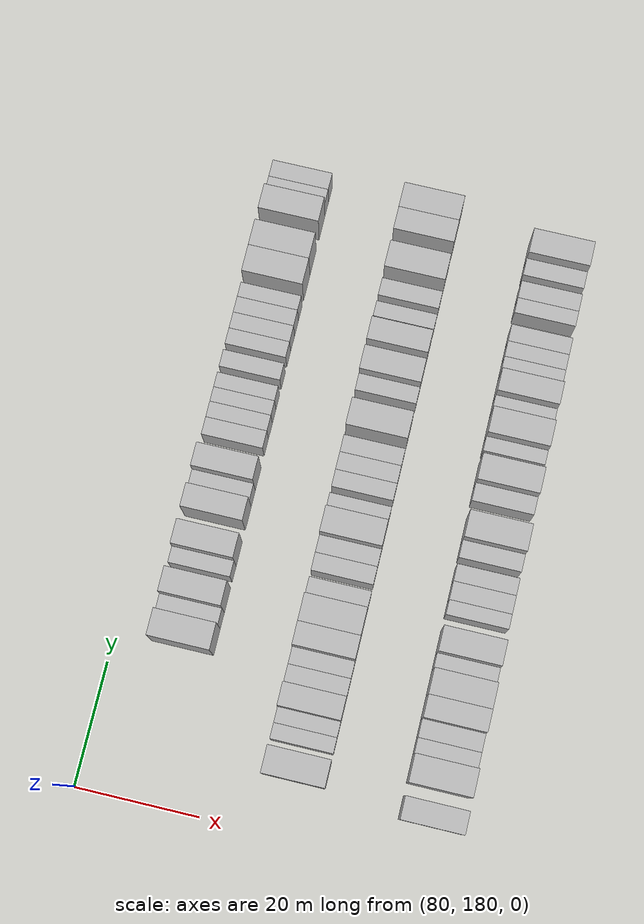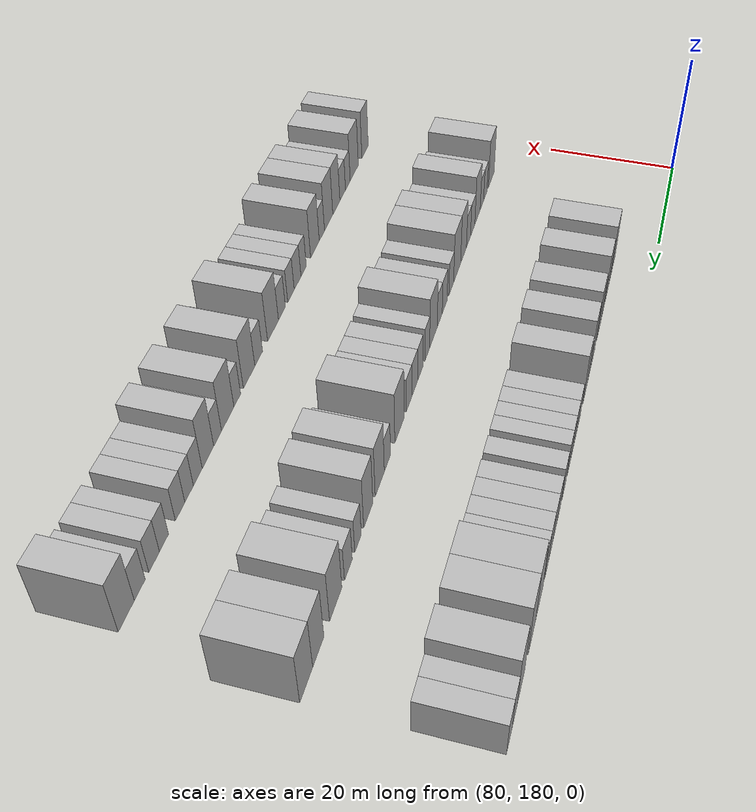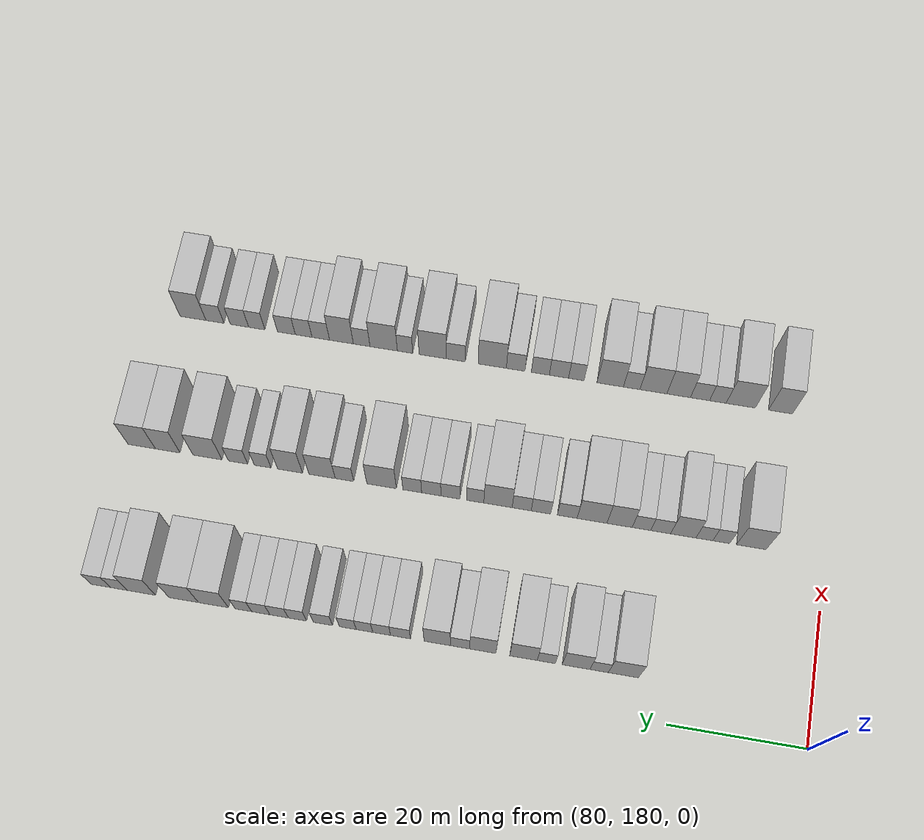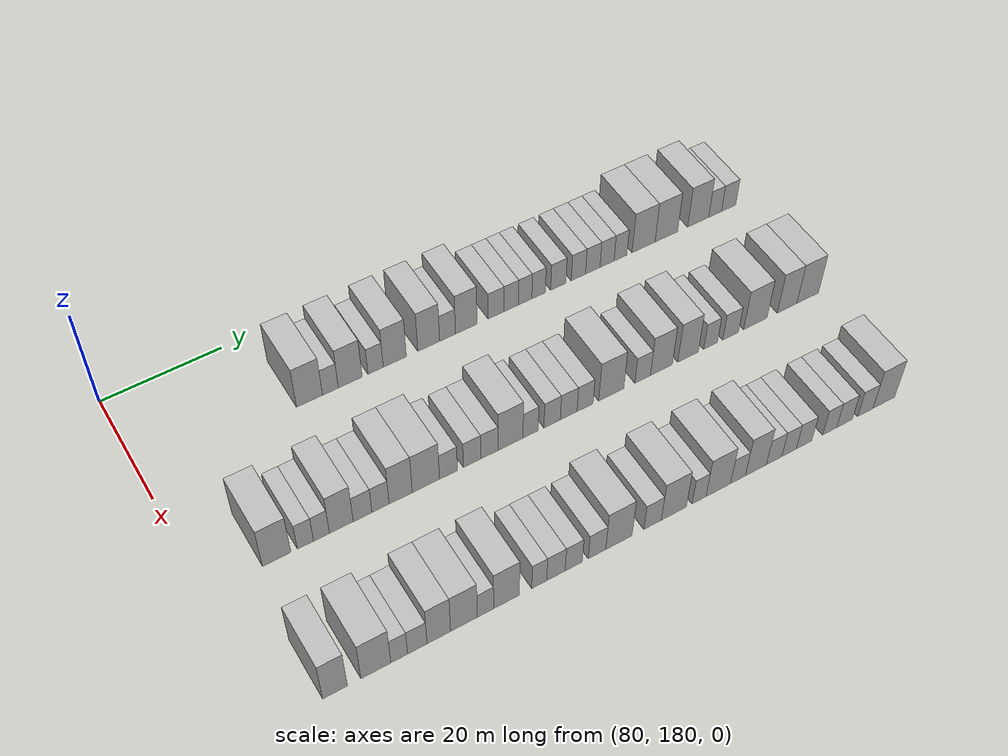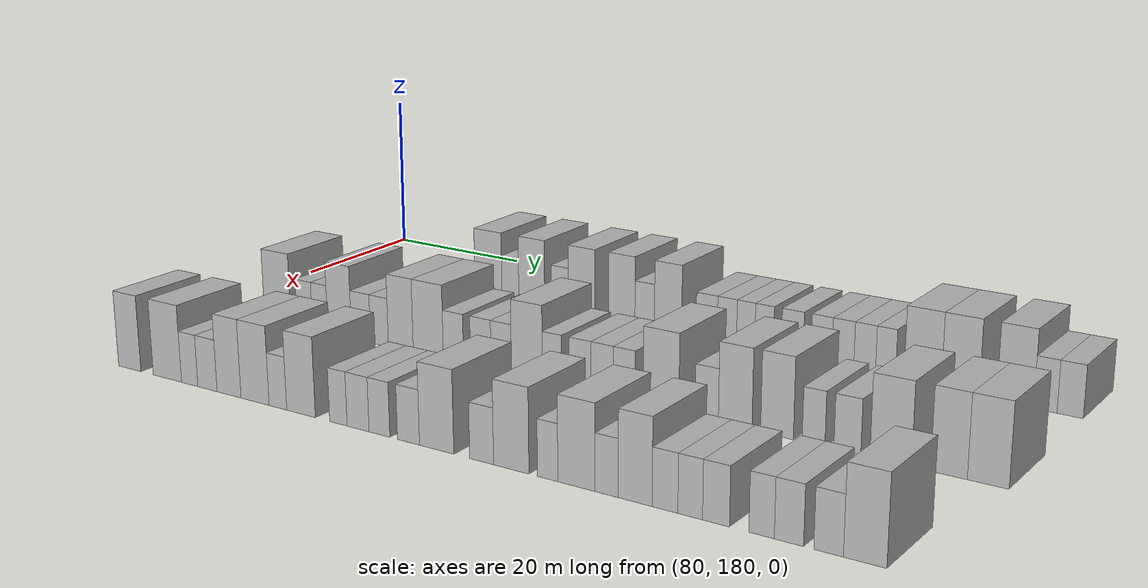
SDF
<sdf version="1.6">
 <world name="default">
  <model name="building_680">
   <static>1</static>
   <pose>91.0000 206.9503 0 0.000000 0.000000 0.000000</pose>
   <link name="link">
    <pose>0 0 4.50 0 0 0</pose>
    <collision name="collision"><geometry><box><size>10.0000 4.3336 9.0000</size></box></geometry></collision>
    <visual name="visual">
     <cast_shadows>0</cast_shadows>
     <geometry><box><size>10.0000 4.3336 9.0000</size></box></geometry>
     <material>
      <script>
       <uri>model://HANNAS_wall/materials/scripts</uri>
       <uri>model://HANNAS_wall/materials/textures</uri>
       <name>vrc/HANNAS_wall</name>
      </script>
     </material>
    </visual>
   </link>
  </model>
  <model name="building_681">
   <static>1</static>
   <pose>91.0000 210.4421 0 0.000000 0.000000 0.000000</pose>
   <link name="link">
    <pose>0 0 3.00 0 0 0</pose>
    <collision name="collision"><geometry><box><size>10.0000 2.6500 6.0000</size></box></geometry></collision>
    <visual name="visual">
     <cast_shadows>0</cast_shadows>
     <geometry><box><size>10.0000 2.6500 6.0000</size></box></geometry>
     <material>
      <script>
       <uri>model://HANNAS_wall/materials/scripts</uri>
       <uri>model://HANNAS_wall/materials/textures</uri>
       <name>vrc/HANNAS_wall</name>
      </script>
     </material>
    </visual>
   </link>
  </model>
  <model name="building_682">
   <static>1</static>
   <pose>91.0000 213.7800 0 0.000000 0.000000 0.000000</pose>
   <link name="link">
    <pose>0 0 4.50 0 0 0</pose>
    <collision name="collision"><geometry><box><size>10.0000 4.0259 9.0000</size></box></geometry></collision>
    <visual name="visual">
     <cast_shadows>0</cast_shadows>
     <geometry><box><size>10.0000 4.0259 9.0000</size></box></geometry>
     <material>
      <script>
       <uri>model://HANNAS_wall/materials/scripts</uri>
       <uri>model://HANNAS_wall/materials/textures</uri>
       <name>vrc/HANNAS_wall</name>
      </script>
     </material>
    </visual>
   </link>
  </model>
  <model name="building_683">
   <static>1</static>
   <pose>91.0000 218.1028 0 0.000000 0.000000 0.000000</pose>
   <link name="link">
    <pose>0 0 3.00 0 0 0</pose>
    <collision name="collision"><geometry><box><size>10.0000 2.6197 6.0000</size></box></geometry></collision>
    <visual name="visual">
     <cast_shadows>0</cast_shadows>
     <geometry><box><size>10.0000 2.6197 6.0000</size></box></geometry>
     <material>
      <script>
       <uri>model://HANNAS_wall/materials/scripts</uri>
       <uri>model://HANNAS_wall/materials/textures</uri>
       <name>vrc/HANNAS_wall</name>
      </script>
     </material>
    </visual>
   </link>
  </model>
  <model name="building_684">
   <static>1</static>
   <pose>91.0000 221.4062 0 0.000000 0.000000 0.000000</pose>
   <link name="link">
    <pose>0 0 4.50 0 0 0</pose>
    <collision name="collision"><geometry><box><size>10.0000 3.9870 9.0000</size></box></geometry></collision>
    <visual name="visual">
     <cast_shadows>0</cast_shadows>
     <geometry><box><size>10.0000 3.9870 9.0000</size></box></geometry>
     <material>
      <script>
       <uri>model://HANNAS_wall/materials/scripts</uri>
       <uri>model://HANNAS_wall/materials/textures</uri>
       <name>vrc/HANNAS_wall</name>
      </script>
     </material>
    </visual>
   </link>
  </model>
  <model name="building_685">
   <static>1</static>
   <pose>91.0000 227.3130 0 0.000000 0.000000 0.000000</pose>
   <link name="link">
    <pose>0 0 4.50 0 0 0</pose>
    <collision name="collision"><geometry><box><size>10.0000 3.8268 9.0000</size></box></geometry></collision>
    <visual name="visual">
     <cast_shadows>0</cast_shadows>
     <geometry><box><size>10.0000 3.8268 9.0000</size></box></geometry>
     <material>
      <script>
       <uri>model://HANNAS_wall/materials/scripts</uri>
       <uri>model://HANNAS_wall/materials/textures</uri>
       <name>vrc/HANNAS_wall</name>
      </script>
     </material>
    </visual>
   </link>
  </model>
  <model name="building_686">
   <static>1</static>
   <pose>91.0000 230.6304 0 0.000000 0.000000 0.000000</pose>
   <link name="link">
    <pose>0 0 3.00 0 0 0</pose>
    <collision name="collision"><geometry><box><size>10.0000 2.8080 6.0000</size></box></geometry></collision>
    <visual name="visual">
     <cast_shadows>0</cast_shadows>
     <geometry><box><size>10.0000 2.8080 6.0000</size></box></geometry>
     <material>
      <script>
       <uri>model://HANNAS_wall/materials/scripts</uri>
       <uri>model://HANNAS_wall/materials/textures</uri>
       <name>vrc/HANNAS_wall</name>
      </script>
     </material>
    </visual>
   </link>
  </model>
  <model name="building_687">
   <static>1</static>
   <pose>91.0000 233.9497 0 0.000000 0.000000 0.000000</pose>
   <link name="link">
    <pose>0 0 4.50 0 0 0</pose>
    <collision name="collision"><geometry><box><size>10.0000 3.8306 9.0000</size></box></geometry></collision>
    <visual name="visual">
     <cast_shadows>0</cast_shadows>
     <geometry><box><size>10.0000 3.8306 9.0000</size></box></geometry>
     <material>
      <script>
       <uri>model://HANNAS_wall/materials/scripts</uri>
       <uri>model://HANNAS_wall/materials/textures</uri>
       <name>vrc/HANNAS_wall</name>
      </script>
     </material>
    </visual>
   </link>
  </model>
  <model name="building_688">
   <static>1</static>
   <pose>91.0000 239.3176 0 0.000000 0.000000 0.000000</pose>
   <link name="link">
    <pose>0 0 3.00 0 0 0</pose>
    <collision name="collision"><geometry><box><size>10.0000 2.9052 6.0000</size></box></geometry></collision>
    <visual name="visual">
     <cast_shadows>0</cast_shadows>
     <geometry><box><size>10.0000 2.9052 6.0000</size></box></geometry>
     <material>
      <script>
       <uri>model://HANNAS_wall/materials/scripts</uri>
       <uri>model://HANNAS_wall/materials/textures</uri>
       <name>vrc/HANNAS_wall</name>
      </script>
     </material>
    </visual>
   </link>
  </model>
  <model name="building_689">
   <static>1</static>
   <pose>91.0000 242.0806 0 0.000000 0.000000 0.000000</pose>
   <link name="link">
    <pose>0 0 3.00 0 0 0</pose>
    <collision name="collision"><geometry><box><size>10.0000 2.6209 6.0000</size></box></geometry></collision>
    <visual name="visual">
     <cast_shadows>0</cast_shadows>
     <geometry><box><size>10.0000 2.6209 6.0000</size></box></geometry>
     <material>
      <script>
       <uri>model://HANNAS_wall/materials/scripts</uri>
       <uri>model://HANNAS_wall/materials/textures</uri>
       <name>vrc/HANNAS_wall</name>
      </script>
     </material>
    </visual>
   </link>
  </model>
  <model name="building_690">
   <static>1</static>
   <pose>91.0000 244.6082 0 0.000000 0.000000 0.000000</pose>
   <link name="link">
    <pose>0 0 3.00 0 0 0</pose>
    <collision name="collision"><geometry><box><size>10.0000 2.4342 6.0000</size></box></geometry></collision>
    <visual name="visual">
     <cast_shadows>0</cast_shadows>
     <geometry><box><size>10.0000 2.4342 6.0000</size></box></geometry>
     <material>
      <script>
       <uri>model://HANNAS_wall/materials/scripts</uri>
       <uri>model://HANNAS_wall/materials/textures</uri>
       <name>vrc/HANNAS_wall</name>
      </script>
     </material>
    </visual>
   </link>
  </model>
  <model name="building_691">
   <static>1</static>
   <pose>91.0000 247.0663 0 0.000000 0.000000 0.000000</pose>
   <link name="link">
    <pose>0 0 3.00 0 0 0</pose>
    <collision name="collision"><geometry><box><size>10.0000 2.4821 6.0000</size></box></geometry></collision>
    <visual name="visual">
     <cast_shadows>0</cast_shadows>
     <geometry><box><size>10.0000 2.4821 6.0000</size></box></geometry>
     <material>
      <script>
       <uri>model://HANNAS_wall/materials/scripts</uri>
       <uri>model://HANNAS_wall/materials/textures</uri>
       <name>vrc/HANNAS_wall</name>
      </script>
     </material>
    </visual>
   </link>
  </model>
  <model name="building_692">
   <static>1</static>
   <pose>91.0000 250.7276 0 0.000000 0.000000 0.000000</pose>
   <link name="link">
    <pose>0 0 3.00 0 0 0</pose>
    <collision name="collision"><geometry><box><size>10.0000 2.8404 6.0000</size></box></geometry></collision>
    <visual name="visual">
     <cast_shadows>0</cast_shadows>
     <geometry><box><size>10.0000 2.8404 6.0000</size></box></geometry>
     <material>
      <script>
       <uri>model://HANNAS_wall/materials/scripts</uri>
       <uri>model://HANNAS_wall/materials/textures</uri>
       <name>vrc/HANNAS_wall</name>
      </script>
     </material>
    </visual>
   </link>
  </model>
  <model name="building_693">
   <static>1</static>
   <pose>91.0000 254.4878 0 0.000000 0.000000 0.000000</pose>
   <link name="link">
    <pose>0 0 3.00 0 0 0</pose>
    <collision name="collision"><geometry><box><size>10.0000 2.6800 6.0000</size></box></geometry></collision>
    <visual name="visual">
     <cast_shadows>0</cast_shadows>
     <geometry><box><size>10.0000 2.6800 6.0000</size></box></geometry>
     <material>
      <script>
       <uri>model://HANNAS_wall/materials/scripts</uri>
       <uri>model://HANNAS_wall/materials/textures</uri>
       <name>vrc/HANNAS_wall</name>
      </script>
     </material>
    </visual>
   </link>
  </model>
  <model name="building_694">
   <static>1</static>
   <pose>91.0000 257.1949 0 0.000000 0.000000 0.000000</pose>
   <link name="link">
    <pose>0 0 3.00 0 0 0</pose>
    <collision name="collision"><geometry><box><size>10.0000 2.7341 6.0000</size></box></geometry></collision>
    <visual name="visual">
     <cast_shadows>0</cast_shadows>
     <geometry><box><size>10.0000 2.7341 6.0000</size></box></geometry>
     <material>
      <script>
       <uri>model://HANNAS_wall/materials/scripts</uri>
       <uri>model://HANNAS_wall/materials/textures</uri>
       <name>vrc/HANNAS_wall</name>
      </script>
     </material>
    </visual>
   </link>
  </model>
  <model name="building_695">
   <static>1</static>
   <pose>91.0000 259.9064 0 0.000000 0.000000 0.000000</pose>
   <link name="link">
    <pose>0 0 3.00 0 0 0</pose>
    <collision name="collision"><geometry><box><size>10.0000 2.6890 6.0000</size></box></geometry></collision>
    <visual name="visual">
     <cast_shadows>0</cast_shadows>
     <geometry><box><size>10.0000 2.6890 6.0000</size></box></geometry>
     <material>
      <script>
       <uri>model://HANNAS_wall/materials/scripts</uri>
       <uri>model://HANNAS_wall/materials/textures</uri>
       <name>vrc/HANNAS_wall</name>
      </script>
     </material>
    </visual>
   </link>
  </model>
  <model name="building_696">
   <static>1</static>
   <pose>91.0000 262.4803 0 0.000000 0.000000 0.000000</pose>
   <link name="link">
    <pose>0 0 3.00 0 0 0</pose>
    <collision name="collision"><geometry><box><size>10.0000 2.4589 6.0000</size></box></geometry></collision>
    <visual name="visual">
     <cast_shadows>0</cast_shadows>
     <geometry><box><size>10.0000 2.4589 6.0000</size></box></geometry>
     <material>
      <script>
       <uri>model://HANNAS_wall/materials/scripts</uri>
       <uri>model://HANNAS_wall/materials/textures</uri>
       <name>vrc/HANNAS_wall</name>
      </script>
     </material>
    </visual>
   </link>
  </model>
  <model name="building_697">
   <static>1</static>
   <pose>91.0000 266.9426 0 0.000000 0.000000 0.000000</pose>
   <link name="link">
    <pose>0 0 4.50 0 0 0</pose>
    <collision name="collision"><geometry><box><size>10.0000 4.4658 9.0000</size></box></geometry></collision>
    <visual name="visual">
     <cast_shadows>0</cast_shadows>
     <geometry><box><size>10.0000 4.4658 9.0000</size></box></geometry>
     <material>
      <script>
       <uri>model://HANNAS_wall/materials/scripts</uri>
       <uri>model://HANNAS_wall/materials/textures</uri>
       <name>vrc/HANNAS_wall</name>
      </script>
     </material>
    </visual>
   </link>
  </model>
  <model name="building_698">
   <static>1</static>
   <pose>91.0000 271.3795 0 0.000000 0.000000 0.000000</pose>
   <link name="link">
    <pose>0 0 4.50 0 0 0</pose>
    <collision name="collision"><geometry><box><size>10.0000 4.4080 9.0000</size></box></geometry></collision>
    <visual name="visual">
     <cast_shadows>0</cast_shadows>
     <geometry><box><size>10.0000 4.4080 9.0000</size></box></geometry>
     <material>
      <script>
       <uri>model://HANNAS_wall/materials/scripts</uri>
       <uri>model://HANNAS_wall/materials/textures</uri>
       <name>vrc/HANNAS_wall</name>
      </script>
     </material>
    </visual>
   </link>
  </model>
  <model name="building_699">
   <static>1</static>
   <pose>91.0000 277.6710 0 0.000000 0.000000 0.000000</pose>
   <link name="link">
    <pose>0 0 4.50 0 0 0</pose>
    <collision name="collision"><geometry><box><size>10.0000 4.1749 9.0000</size></box></geometry></collision>
    <visual name="visual">
     <cast_shadows>0</cast_shadows>
     <geometry><box><size>10.0000 4.1749 9.0000</size></box></geometry>
     <material>
      <script>
       <uri>model://HANNAS_wall/materials/scripts</uri>
       <uri>model://HANNAS_wall/materials/textures</uri>
       <name>vrc/HANNAS_wall</name>
      </script>
     </material>
    </visual>
   </link>
  </model>
  <model name="building_700">
   <static>1</static>
   <pose>91.0000 281.0424 0 0.000000 0.000000 0.000000</pose>
   <link name="link">
    <pose>0 0 3.00 0 0 0</pose>
    <collision name="collision"><geometry><box><size>10.0000 2.5679 6.0000</size></box></geometry></collision>
    <visual name="visual">
     <cast_shadows>0</cast_shadows>
     <geometry><box><size>10.0000 2.5679 6.0000</size></box></geometry>
     <material>
      <script>
       <uri>model://HANNAS_wall/materials/scripts</uri>
       <uri>model://HANNAS_wall/materials/textures</uri>
       <name>vrc/HANNAS_wall</name>
      </script>
     </material>
    </visual>
   </link>
  </model>
  <model name="building_701">
   <static>1</static>
   <pose>91.0000 283.7625 0 0.000000 0.000000 0.000000</pose>
   <link name="link">
    <pose>0 0 3.00 0 0 0</pose>
    <collision name="collision"><geometry><box><size>10.0000 2.8722 6.0000</size></box></geometry></collision>
    <visual name="visual">
     <cast_shadows>0</cast_shadows>
     <geometry><box><size>10.0000 2.8722 6.0000</size></box></geometry>
     <material>
      <script>
       <uri>model://HANNAS_wall/materials/scripts</uri>
       <uri>model://HANNAS_wall/materials/textures</uri>
       <name>vrc/HANNAS_wall</name>
      </script>
     </material>
    </visual>
   </link>
  </model>
  <model name="building_864">
   <static>1</static>
   <pose>113.0000 190.8832 0 0.000000 0.000000 0.000000</pose>
   <link name="link">
    <pose>0 0 4.50 0 0 0</pose>
    <collision name="collision"><geometry><box><size>10.0000 4.3804 9.0000</size></box></geometry></collision>
    <visual name="visual">
     <cast_shadows>0</cast_shadows>
     <geometry><box><size>10.0000 4.3804 9.0000</size></box></geometry>
     <material>
      <script>
       <uri>model://HANNAS_wall/materials/scripts</uri>
       <uri>model://HANNAS_wall/materials/textures</uri>
       <name>vrc/HANNAS_wall</name>
      </script>
     </material>
    </visual>
   </link>
  </model>
  <model name="building_865">
   <static>1</static>
   <pose>113.0000 195.3348 0 0.000000 0.000000 0.000000</pose>
   <link name="link">
    <pose>0 0 3.00 0 0 0</pose>
    <collision name="collision"><geometry><box><size>10.0000 2.5228 6.0000</size></box></geometry></collision>
    <visual name="visual">
     <cast_shadows>0</cast_shadows>
     <geometry><box><size>10.0000 2.5228 6.0000</size></box></geometry>
     <material>
      <script>
       <uri>model://HANNAS_wall/materials/scripts</uri>
       <uri>model://HANNAS_wall/materials/textures</uri>
       <name>vrc/HANNAS_wall</name>
      </script>
     </material>
    </visual>
   </link>
  </model>
  <model name="building_866">
   <static>1</static>
   <pose>113.0000 197.8386 0 0.000000 0.000000 0.000000</pose>
   <link name="link">
    <pose>0 0 3.00 0 0 0</pose>
    <collision name="collision"><geometry><box><size>10.0000 2.4848 6.0000</size></box></geometry></collision>
    <visual name="visual">
     <cast_shadows>0</cast_shadows>
     <geometry><box><size>10.0000 2.4848 6.0000</size></box></geometry>
     <material>
      <script>
       <uri>model://HANNAS_wall/materials/scripts</uri>
       <uri>model://HANNAS_wall/materials/textures</uri>
       <name>vrc/HANNAS_wall</name>
      </script>
     </material>
    </visual>
   </link>
  </model>
  <model name="building_867">
   <static>1</static>
   <pose>113.0000 200.9615 0 0.000000 0.000000 0.000000</pose>
   <link name="link">
    <pose>0 0 4.50 0 0 0</pose>
    <collision name="collision"><geometry><box><size>10.0000 3.7610 9.0000</size></box></geometry></collision>
    <visual name="visual">
     <cast_shadows>0</cast_shadows>
     <geometry><box><size>10.0000 3.7610 9.0000</size></box></geometry>
     <material>
      <script>
       <uri>model://HANNAS_wall/materials/scripts</uri>
       <uri>model://HANNAS_wall/materials/textures</uri>
       <name>vrc/HANNAS_wall</name>
      </script>
     </material>
    </visual>
   </link>
  </model>
  <model name="building_868">
   <static>1</static>
   <pose>113.0000 204.3295 0 0.000000 0.000000 0.000000</pose>
   <link name="link">
    <pose>0 0 3.00 0 0 0</pose>
    <collision name="collision"><geometry><box><size>10.0000 2.9751 6.0000</size></box></geometry></collision>
    <visual name="visual">
     <cast_shadows>0</cast_shadows>
     <geometry><box><size>10.0000 2.9751 6.0000</size></box></geometry>
     <material>
      <script>
       <uri>model://HANNAS_wall/materials/scripts</uri>
       <uri>model://HANNAS_wall/materials/textures</uri>
       <name>vrc/HANNAS_wall</name>
      </script>
     </material>
    </visual>
   </link>
  </model>
  <model name="building_869">
   <static>1</static>
   <pose>113.0000 207.1946 0 0.000000 0.000000 0.000000</pose>
   <link name="link">
    <pose>0 0 3.00 0 0 0</pose>
    <collision name="collision"><geometry><box><size>10.0000 2.7550 6.0000</size></box></geometry></collision>
    <visual name="visual">
     <cast_shadows>0</cast_shadows>
     <geometry><box><size>10.0000 2.7550 6.0000</size></box></geometry>
     <material>
      <script>
       <uri>model://HANNAS_wall/materials/scripts</uri>
       <uri>model://HANNAS_wall/materials/textures</uri>
       <name>vrc/HANNAS_wall</name>
      </script>
     </material>
    </visual>
   </link>
  </model>
  <model name="building_870">
   <static>1</static>
   <pose>113.0000 210.4574 0 0.000000 0.000000 0.000000</pose>
   <link name="link">
    <pose>0 0 4.50 0 0 0</pose>
    <collision name="collision"><geometry><box><size>10.0000 3.7706 9.0000</size></box></geometry></collision>
    <visual name="visual">
     <cast_shadows>0</cast_shadows>
     <geometry><box><size>10.0000 3.7706 9.0000</size></box></geometry>
     <material>
      <script>
       <uri>model://HANNAS_wall/materials/scripts</uri>
       <uri>model://HANNAS_wall/materials/textures</uri>
       <name>vrc/HANNAS_wall</name>
      </script>
     </material>
    </visual>
   </link>
  </model>
  <model name="building_871">
   <static>1</static>
   <pose>113.0000 214.5747 0 0.000000 0.000000 0.000000</pose>
   <link name="link">
    <pose>0 0 4.50 0 0 0</pose>
    <collision name="collision"><geometry><box><size>10.0000 4.4639 9.0000</size></box></geometry></collision>
    <visual name="visual">
     <cast_shadows>0</cast_shadows>
     <geometry><box><size>10.0000 4.4639 9.0000</size></box></geometry>
     <material>
      <script>
       <uri>model://HANNAS_wall/materials/scripts</uri>
       <uri>model://HANNAS_wall/materials/textures</uri>
       <name>vrc/HANNAS_wall</name>
      </script>
     </material>
    </visual>
   </link>
  </model>
  <model name="building_872">
   <static>1</static>
   <pose>113.0000 218.2858 0 0.000000 0.000000 0.000000</pose>
   <link name="link">
    <pose>0 0 3.00 0 0 0</pose>
    <collision name="collision"><geometry><box><size>10.0000 2.9584 6.0000</size></box></geometry></collision>
    <visual name="visual">
     <cast_shadows>0</cast_shadows>
     <geometry><box><size>10.0000 2.9584 6.0000</size></box></geometry>
     <material>
      <script>
       <uri>model://HANNAS_wall/materials/scripts</uri>
       <uri>model://HANNAS_wall/materials/textures</uri>
       <name>vrc/HANNAS_wall</name>
      </script>
     </material>
    </visual>
   </link>
  </model>
  <model name="building_873">
   <static>1</static>
   <pose>113.0000 222.2305 0 0.000000 0.000000 0.000000</pose>
   <link name="link">
    <pose>0 0 3.00 0 0 0</pose>
    <collision name="collision"><geometry><box><size>10.0000 2.9311 6.0000</size></box></geometry></collision>
    <visual name="visual">
     <cast_shadows>0</cast_shadows>
     <geometry><box><size>10.0000 2.9311 6.0000</size></box></geometry>
     <material>
      <script>
       <uri>model://HANNAS_wall/materials/scripts</uri>
       <uri>model://HANNAS_wall/materials/textures</uri>
       <name>vrc/HANNAS_wall</name>
      </script>
     </material>
    </visual>
   </link>
  </model>
  <model name="building_874">
   <static>1</static>
   <pose>113.0000 225.1241 0 0.000000 0.000000 0.000000</pose>
   <link name="link">
    <pose>0 0 3.00 0 0 0</pose>
    <collision name="collision"><geometry><box><size>10.0000 2.8561 6.0000</size></box></geometry></collision>
    <visual name="visual">
     <cast_shadows>0</cast_shadows>
     <geometry><box><size>10.0000 2.8561 6.0000</size></box></geometry>
     <material>
      <script>
       <uri>model://HANNAS_wall/materials/scripts</uri>
       <uri>model://HANNAS_wall/materials/textures</uri>
       <name>vrc/HANNAS_wall</name>
      </script>
     </material>
    </visual>
   </link>
  </model>
  <model name="building_875">
   <static>1</static>
   <pose>113.0000 228.6903 0 0.000000 0.000000 0.000000</pose>
   <link name="link">
    <pose>0 0 4.50 0 0 0</pose>
    <collision name="collision"><geometry><box><size>10.0000 4.2763 9.0000</size></box></geometry></collision>
    <visual name="visual">
     <cast_shadows>0</cast_shadows>
     <geometry><box><size>10.0000 4.2763 9.0000</size></box></geometry>
     <material>
      <script>
       <uri>model://HANNAS_wall/materials/scripts</uri>
       <uri>model://HANNAS_wall/materials/textures</uri>
       <name>vrc/HANNAS_wall</name>
      </script>
     </material>
    </visual>
   </link>
  </model>
  <model name="building_876">
   <static>1</static>
   <pose>113.0000 232.1384 0 0.000000 0.000000 0.000000</pose>
   <link name="link">
    <pose>0 0 3.00 0 0 0</pose>
    <collision name="collision"><geometry><box><size>10.0000 2.6198 6.0000</size></box></geometry></collision>
    <visual name="visual">
     <cast_shadows>0</cast_shadows>
     <geometry><box><size>10.0000 2.6198 6.0000</size></box></geometry>
     <material>
      <script>
       <uri>model://HANNAS_wall/materials/scripts</uri>
       <uri>model://HANNAS_wall/materials/textures</uri>
       <name>vrc/HANNAS_wall</name>
      </script>
     </material>
    </visual>
   </link>
  </model>
  <model name="building_877">
   <static>1</static>
   <pose>113.0000 235.8734 0 0.000000 0.000000 0.000000</pose>
   <link name="link">
    <pose>0 0 3.00 0 0 0</pose>
    <collision name="collision"><geometry><box><size>10.0000 2.8501 6.0000</size></box></geometry></collision>
    <visual name="visual">
     <cast_shadows>0</cast_shadows>
     <geometry><box><size>10.0000 2.8501 6.0000</size></box></geometry>
     <material>
      <script>
       <uri>model://HANNAS_wall/materials/scripts</uri>
       <uri>model://HANNAS_wall/materials/textures</uri>
       <name>vrc/HANNAS_wall</name>
      </script>
     </material>
    </visual>
   </link>
  </model>
  <model name="building_878">
   <static>1</static>
   <pose>113.0000 238.7595 0 0.000000 0.000000 0.000000</pose>
   <link name="link">
    <pose>0 0 3.00 0 0 0</pose>
    <collision name="collision"><geometry><box><size>10.0000 2.9222 6.0000</size></box></geometry></collision>
    <visual name="visual">
     <cast_shadows>0</cast_shadows>
     <geometry><box><size>10.0000 2.9222 6.0000</size></box></geometry>
     <material>
      <script>
       <uri>model://HANNAS_wall/materials/scripts</uri>
       <uri>model://HANNAS_wall/materials/textures</uri>
       <name>vrc/HANNAS_wall</name>
      </script>
     </material>
    </visual>
   </link>
  </model>
  <model name="building_879">
   <static>1</static>
   <pose>113.0000 241.6401 0 0.000000 0.000000 0.000000</pose>
   <link name="link">
    <pose>0 0 3.00 0 0 0</pose>
    <collision name="collision"><geometry><box><size>10.0000 2.8390 6.0000</size></box></geometry></collision>
    <visual name="visual">
     <cast_shadows>0</cast_shadows>
     <geometry><box><size>10.0000 2.8390 6.0000</size></box></geometry>
     <material>
      <script>
       <uri>model://HANNAS_wall/materials/scripts</uri>
       <uri>model://HANNAS_wall/materials/textures</uri>
       <name>vrc/HANNAS_wall</name>
      </script>
     </material>
    </visual>
   </link>
  </model>
  <model name="building_880">
   <static>1</static>
   <pose>113.0000 246.3062 0 0.000000 0.000000 0.000000</pose>
   <link name="link">
    <pose>0 0 4.50 0 0 0</pose>
    <collision name="collision"><geometry><box><size>10.0000 4.4931 9.0000</size></box></geometry></collision>
    <visual name="visual">
     <cast_shadows>0</cast_shadows>
     <geometry><box><size>10.0000 4.4931 9.0000</size></box></geometry>
     <material>
      <script>
       <uri>model://HANNAS_wall/materials/scripts</uri>
       <uri>model://HANNAS_wall/materials/textures</uri>
       <name>vrc/HANNAS_wall</name>
      </script>
     </material>
    </visual>
   </link>
  </model>
  <model name="building_881">
   <static>1</static>
   <pose>113.0000 251.9614 0 0.000000 0.000000 0.000000</pose>
   <link name="link">
    <pose>0 0 3.00 0 0 0</pose>
    <collision name="collision"><geometry><box><size>10.0000 2.8173 6.0000</size></box></geometry></collision>
    <visual name="visual">
     <cast_shadows>0</cast_shadows>
     <geometry><box><size>10.0000 2.8173 6.0000</size></box></geometry>
     <material>
      <script>
       <uri>model://HANNAS_wall/materials/scripts</uri>
       <uri>model://HANNAS_wall/materials/textures</uri>
       <name>vrc/HANNAS_wall</name>
      </script>
     </material>
    </visual>
   </link>
  </model>
  <model name="building_882">
   <static>1</static>
   <pose>113.0000 255.3738 0 0.000000 0.000000 0.000000</pose>
   <link name="link">
    <pose>0 0 4.50 0 0 0</pose>
    <collision name="collision"><geometry><box><size>10.0000 4.0074 9.0000</size></box></geometry></collision>
    <visual name="visual">
     <cast_shadows>0</cast_shadows>
     <geometry><box><size>10.0000 4.0074 9.0000</size></box></geometry>
     <material>
      <script>
       <uri>model://HANNAS_wall/materials/scripts</uri>
       <uri>model://HANNAS_wall/materials/textures</uri>
       <name>vrc/HANNAS_wall</name>
      </script>
     </material>
    </visual>
   </link>
  </model>
  <model name="building_883">
   <static>1</static>
   <pose>113.0000 260.2802 0 0.000000 0.000000 0.000000</pose>
   <link name="link">
    <pose>0 0 4.50 0 0 0</pose>
    <collision name="collision"><geometry><box><size>10.0000 3.8054 9.0000</size></box></geometry></collision>
    <visual name="visual">
     <cast_shadows>0</cast_shadows>
     <geometry><box><size>10.0000 3.8054 9.0000</size></box></geometry>
     <material>
      <script>
       <uri>model://HANNAS_wall/materials/scripts</uri>
       <uri>model://HANNAS_wall/materials/textures</uri>
       <name>vrc/HANNAS_wall</name>
      </script>
     </material>
    </visual>
   </link>
  </model>
  <model name="building_884">
   <static>1</static>
   <pose>113.0000 264.4716 0 0.000000 0.000000 0.000000</pose>
   <link name="link">
    <pose>0 0 3.00 0 0 0</pose>
    <collision name="collision"><geometry><box><size>10.0000 2.5775 6.0000</size></box></geometry></collision>
    <visual name="visual">
     <cast_shadows>0</cast_shadows>
     <geometry><box><size>10.0000 2.5775 6.0000</size></box></geometry>
     <material>
      <script>
       <uri>model://HANNAS_wall/materials/scripts</uri>
       <uri>model://HANNAS_wall/materials/textures</uri>
       <name>vrc/HANNAS_wall</name>
      </script>
     </material>
    </visual>
   </link>
  </model>
  <model name="building_885">
   <static>1</static>
   <pose>113.0000 268.2476 0 0.000000 0.000000 0.000000</pose>
   <link name="link">
    <pose>0 0 3.00 0 0 0</pose>
    <collision name="collision"><geometry><box><size>10.0000 2.9745 6.0000</size></box></geometry></collision>
    <visual name="visual">
     <cast_shadows>0</cast_shadows>
     <geometry><box><size>10.0000 2.9745 6.0000</size></box></geometry>
     <material>
      <script>
       <uri>model://HANNAS_wall/materials/scripts</uri>
       <uri>model://HANNAS_wall/materials/textures</uri>
       <name>vrc/HANNAS_wall</name>
      </script>
     </material>
    </visual>
   </link>
  </model>
  <model name="building_886">
   <static>1</static>
   <pose>113.0000 272.9735 0 0.000000 0.000000 0.000000</pose>
   <link name="link">
    <pose>0 0 4.50 0 0 0</pose>
    <collision name="collision"><geometry><box><size>10.0000 4.4773 9.0000</size></box></geometry></collision>
    <visual name="visual">
     <cast_shadows>0</cast_shadows>
     <geometry><box><size>10.0000 4.4773 9.0000</size></box></geometry>
     <material>
      <script>
       <uri>model://HANNAS_wall/materials/scripts</uri>
       <uri>model://HANNAS_wall/materials/textures</uri>
       <name>vrc/HANNAS_wall</name>
      </script>
     </material>
    </visual>
   </link>
  </model>
  <model name="building_887">
   <static>1</static>
   <pose>113.0000 279.1210 0 0.000000 0.000000 0.000000</pose>
   <link name="link">
    <pose>0 0 4.50 0 0 0</pose>
    <collision name="collision"><geometry><box><size>10.0000 3.8177 9.0000</size></box></geometry></collision>
    <visual name="visual">
     <cast_shadows>0</cast_shadows>
     <geometry><box><size>10.0000 3.8177 9.0000</size></box></geometry>
     <material>
      <script>
       <uri>model://HANNAS_wall/materials/scripts</uri>
       <uri>model://HANNAS_wall/materials/textures</uri>
       <name>vrc/HANNAS_wall</name>
      </script>
     </material>
    </visual>
   </link>
  </model>
  <model name="building_888">
   <static>1</static>
   <pose>113.0000 283.1468 0 0.000000 0.000000 0.000000</pose>
   <link name="link">
    <pose>0 0 4.50 0 0 0</pose>
    <collision name="collision"><geometry><box><size>10.0000 4.2338 9.0000</size></box></geometry></collision>
    <visual name="visual">
     <cast_shadows>0</cast_shadows>
     <geometry><box><size>10.0000 4.2338 9.0000</size></box></geometry>
     <material>
      <script>
       <uri>model://HANNAS_wall/materials/scripts</uri>
       <uri>model://HANNAS_wall/materials/textures</uri>
       <name>vrc/HANNAS_wall</name>
      </script>
     </material>
    </visual>
   </link>
  </model>
  <model name="building_1052">
   <static>1</static>
   <pose>135.0000 188.6907 0 0.000000 0.000000 0.000000</pose>
   <link name="link">
    <pose>0 0 4.50 0 0 0</pose>
    <collision name="collision"><geometry><box><size>10.0000 3.6491 9.0000</size></box></geometry></collision>
    <visual name="visual">
     <cast_shadows>0</cast_shadows>
     <geometry><box><size>10.0000 3.6491 9.0000</size></box></geometry>
     <material>
      <script>
       <uri>model://HANNAS_wall/materials/scripts</uri>
       <uri>model://HANNAS_wall/materials/textures</uri>
       <name>vrc/HANNAS_wall</name>
      </script>
     </material>
    </visual>
   </link>
  </model>
  <model name="building_1053">
   <static>1</static>
   <pose>135.0000 194.7549 0 0.000000 0.000000 0.000000</pose>
   <link name="link">
    <pose>0 0 4.50 0 0 0</pose>
    <collision name="collision"><geometry><box><size>10.0000 4.4795 9.0000</size></box></geometry></collision>
    <visual name="visual">
     <cast_shadows>0</cast_shadows>
     <geometry><box><size>10.0000 4.4795 9.0000</size></box></geometry>
     <material>
      <script>
       <uri>model://HANNAS_wall/materials/scripts</uri>
       <uri>model://HANNAS_wall/materials/textures</uri>
       <name>vrc/HANNAS_wall</name>
      </script>
     </material>
    </visual>
   </link>
  </model>
  <model name="building_1054">
   <static>1</static>
   <pose>135.0000 198.2614 0 0.000000 0.000000 0.000000</pose>
   <link name="link">
    <pose>0 0 3.00 0 0 0</pose>
    <collision name="collision"><geometry><box><size>10.0000 2.5334 6.0000</size></box></geometry></collision>
    <visual name="visual">
     <cast_shadows>0</cast_shadows>
     <geometry><box><size>10.0000 2.5334 6.0000</size></box></geometry>
     <material>
      <script>
       <uri>model://HANNAS_wall/materials/scripts</uri>
       <uri>model://HANNAS_wall/materials/textures</uri>
       <name>vrc/HANNAS_wall</name>
      </script>
     </material>
    </visual>
   </link>
  </model>
  <model name="building_1055">
   <static>1</static>
   <pose>135.0000 201.0024 0 0.000000 0.000000 0.000000</pose>
   <link name="link">
    <pose>0 0 3.00 0 0 0</pose>
    <collision name="collision"><geometry><box><size>10.0000 2.9487 6.0000</size></box></geometry></collision>
    <visual name="visual">
     <cast_shadows>0</cast_shadows>
     <geometry><box><size>10.0000 2.9487 6.0000</size></box></geometry>
     <material>
      <script>
       <uri>model://HANNAS_wall/materials/scripts</uri>
       <uri>model://HANNAS_wall/materials/textures</uri>
       <name>vrc/HANNAS_wall</name>
      </script>
     </material>
    </visual>
   </link>
  </model>
  <model name="building_1056">
   <static>1</static>
   <pose>135.0000 204.2892 0 0.000000 0.000000 0.000000</pose>
   <link name="link">
    <pose>0 0 4.50 0 0 0</pose>
    <collision name="collision"><geometry><box><size>10.0000 3.6248 9.0000</size></box></geometry></collision>
    <visual name="visual">
     <cast_shadows>0</cast_shadows>
     <geometry><box><size>10.0000 3.6248 9.0000</size></box></geometry>
     <material>
      <script>
       <uri>model://HANNAS_wall/materials/scripts</uri>
       <uri>model://HANNAS_wall/materials/textures</uri>
       <name>vrc/HANNAS_wall</name>
      </script>
     </material>
    </visual>
   </link>
  </model>
  <model name="building_1057">
   <static>1</static>
   <pose>135.0000 208.1753 0 0.000000 0.000000 0.000000</pose>
   <link name="link">
    <pose>0 0 4.50 0 0 0</pose>
    <collision name="collision"><geometry><box><size>10.0000 4.1475 9.0000</size></box></geometry></collision>
    <visual name="visual">
     <cast_shadows>0</cast_shadows>
     <geometry><box><size>10.0000 4.1475 9.0000</size></box></geometry>
     <material>
      <script>
       <uri>model://HANNAS_wall/materials/scripts</uri>
       <uri>model://HANNAS_wall/materials/textures</uri>
       <name>vrc/HANNAS_wall</name>
      </script>
     </material>
    </visual>
   </link>
  </model>
  <model name="building_1058">
   <static>1</static>
   <pose>135.0000 211.5256 0 0.000000 0.000000 0.000000</pose>
   <link name="link">
    <pose>0 0 3.00 0 0 0</pose>
    <collision name="collision"><geometry><box><size>10.0000 2.5530 6.0000</size></box></geometry></collision>
    <visual name="visual">
     <cast_shadows>0</cast_shadows>
     <geometry><box><size>10.0000 2.5530 6.0000</size></box></geometry>
     <material>
      <script>
       <uri>model://HANNAS_wall/materials/scripts</uri>
       <uri>model://HANNAS_wall/materials/textures</uri>
       <name>vrc/HANNAS_wall</name>
      </script>
     </material>
    </visual>
   </link>
  </model>
  <model name="building_1059">
   <static>1</static>
   <pose>135.0000 214.8454 0 0.000000 0.000000 0.000000</pose>
   <link name="link">
    <pose>0 0 4.50 0 0 0</pose>
    <collision name="collision"><geometry><box><size>10.0000 4.0866 9.0000</size></box></geometry></collision>
    <visual name="visual">
     <cast_shadows>0</cast_shadows>
     <geometry><box><size>10.0000 4.0866 9.0000</size></box></geometry>
     <material>
      <script>
       <uri>model://HANNAS_wall/materials/scripts</uri>
       <uri>model://HANNAS_wall/materials/textures</uri>
       <name>vrc/HANNAS_wall</name>
      </script>
     </material>
    </visual>
   </link>
  </model>
  <model name="building_1060">
   <static>1</static>
   <pose>135.0000 220.0924 0 0.000000 0.000000 0.000000</pose>
   <link name="link">
    <pose>0 0 3.00 0 0 0</pose>
    <collision name="collision"><geometry><box><size>10.0000 2.4075 6.0000</size></box></geometry></collision>
    <visual name="visual">
     <cast_shadows>0</cast_shadows>
     <geometry><box><size>10.0000 2.4075 6.0000</size></box></geometry>
     <material>
      <script>
       <uri>model://HANNAS_wall/materials/scripts</uri>
       <uri>model://HANNAS_wall/materials/textures</uri>
       <name>vrc/HANNAS_wall</name>
      </script>
     </material>
    </visual>
   </link>
  </model>
  <model name="building_1061">
   <static>1</static>
   <pose>135.0000 222.7915 0 0.000000 0.000000 0.000000</pose>
   <link name="link">
    <pose>0 0 3.00 0 0 0</pose>
    <collision name="collision"><geometry><box><size>10.0000 2.9906 6.0000</size></box></geometry></collision>
    <visual name="visual">
     <cast_shadows>0</cast_shadows>
     <geometry><box><size>10.0000 2.9906 6.0000</size></box></geometry>
     <material>
      <script>
       <uri>model://HANNAS_wall/materials/scripts</uri>
       <uri>model://HANNAS_wall/materials/textures</uri>
       <name>vrc/HANNAS_wall</name>
      </script>
     </material>
    </visual>
   </link>
  </model>
  <model name="building_1062">
   <static>1</static>
   <pose>135.0000 225.6819 0 0.000000 0.000000 0.000000</pose>
   <link name="link">
    <pose>0 0 3.00 0 0 0</pose>
    <collision name="collision"><geometry><box><size>10.0000 2.7903 6.0000</size></box></geometry></collision>
    <visual name="visual">
     <cast_shadows>0</cast_shadows>
     <geometry><box><size>10.0000 2.7903 6.0000</size></box></geometry>
     <material>
      <script>
       <uri>model://HANNAS_wall/materials/scripts</uri>
       <uri>model://HANNAS_wall/materials/textures</uri>
       <name>vrc/HANNAS_wall</name>
      </script>
     </material>
    </visual>
   </link>
  </model>
  <model name="building_1063">
   <static>1</static>
   <pose>135.0000 229.5197 0 0.000000 0.000000 0.000000</pose>
   <link name="link">
    <pose>0 0 3.00 0 0 0</pose>
    <collision name="collision"><geometry><box><size>10.0000 2.8853 6.0000</size></box></geometry></collision>
    <visual name="visual">
     <cast_shadows>0</cast_shadows>
     <geometry><box><size>10.0000 2.8853 6.0000</size></box></geometry>
     <material>
      <script>
       <uri>model://HANNAS_wall/materials/scripts</uri>
       <uri>model://HANNAS_wall/materials/textures</uri>
       <name>vrc/HANNAS_wall</name>
      </script>
     </material>
    </visual>
   </link>
  </model>
  <model name="building_1064">
   <static>1</static>
   <pose>135.0000 233.1649 0 0.000000 0.000000 0.000000</pose>
   <link name="link">
    <pose>0 0 4.50 0 0 0</pose>
    <collision name="collision"><geometry><box><size>10.0000 4.4050 9.0000</size></box></geometry></collision>
    <visual name="visual">
     <cast_shadows>0</cast_shadows>
     <geometry><box><size>10.0000 4.4050 9.0000</size></box></geometry>
     <material>
      <script>
       <uri>model://HANNAS_wall/materials/scripts</uri>
       <uri>model://HANNAS_wall/materials/textures</uri>
       <name>vrc/HANNAS_wall</name>
      </script>
     </material>
    </visual>
   </link>
  </model>
  <model name="building_1065">
   <static>1</static>
   <pose>135.0000 238.8476 0 0.000000 0.000000 0.000000</pose>
   <link name="link">
    <pose>0 0 3.00 0 0 0</pose>
    <collision name="collision"><geometry><box><size>10.0000 2.9604 6.0000</size></box></geometry></collision>
    <visual name="visual">
     <cast_shadows>0</cast_shadows>
     <geometry><box><size>10.0000 2.9604 6.0000</size></box></geometry>
     <material>
      <script>
       <uri>model://HANNAS_wall/materials/scripts</uri>
       <uri>model://HANNAS_wall/materials/textures</uri>
       <name>vrc/HANNAS_wall</name>
      </script>
     </material>
    </visual>
   </link>
  </model>
  <model name="building_1066">
   <static>1</static>
   <pose>135.0000 242.4714 0 0.000000 0.000000 0.000000</pose>
   <link name="link">
    <pose>0 0 4.50 0 0 0</pose>
    <collision name="collision"><geometry><box><size>10.0000 4.2872 9.0000</size></box></geometry></collision>
    <visual name="visual">
     <cast_shadows>0</cast_shadows>
     <geometry><box><size>10.0000 4.2872 9.0000</size></box></geometry>
     <material>
      <script>
       <uri>model://HANNAS_wall/materials/scripts</uri>
       <uri>model://HANNAS_wall/materials/textures</uri>
       <name>vrc/HANNAS_wall</name>
      </script>
     </material>
    </visual>
   </link>
  </model>
  <model name="building_1067">
   <static>1</static>
   <pose>135.0000 246.8215 0 0.000000 0.000000 0.000000</pose>
   <link name="link">
    <pose>0 0 3.00 0 0 0</pose>
    <collision name="collision"><geometry><box><size>10.0000 2.4129 6.0000</size></box></geometry></collision>
    <visual name="visual">
     <cast_shadows>0</cast_shadows>
     <geometry><box><size>10.0000 2.4129 6.0000</size></box></geometry>
     <material>
      <script>
       <uri>model://HANNAS_wall/materials/scripts</uri>
       <uri>model://HANNAS_wall/materials/textures</uri>
       <name>vrc/HANNAS_wall</name>
      </script>
     </material>
    </visual>
   </link>
  </model>
  <model name="building_1068">
   <static>1</static>
   <pose>135.0000 250.1822 0 0.000000 0.000000 0.000000</pose>
   <link name="link">
    <pose>0 0 4.50 0 0 0</pose>
    <collision name="collision"><geometry><box><size>10.0000 4.3085 9.0000</size></box></geometry></collision>
    <visual name="visual">
     <cast_shadows>0</cast_shadows>
     <geometry><box><size>10.0000 4.3085 9.0000</size></box></geometry>
     <material>
      <script>
       <uri>model://HANNAS_wall/materials/scripts</uri>
       <uri>model://HANNAS_wall/materials/textures</uri>
       <name>vrc/HANNAS_wall</name>
      </script>
     </material>
    </visual>
   </link>
  </model>
  <model name="building_1069">
   <static>1</static>
   <pose>135.0000 253.6487 0 0.000000 0.000000 0.000000</pose>
   <link name="link">
    <pose>0 0 3.00 0 0 0</pose>
    <collision name="collision"><geometry><box><size>10.0000 2.6246 6.0000</size></box></geometry></collision>
    <visual name="visual">
     <cast_shadows>0</cast_shadows>
     <geometry><box><size>10.0000 2.6246 6.0000</size></box></geometry>
     <material>
      <script>
       <uri>model://HANNAS_wall/materials/scripts</uri>
       <uri>model://HANNAS_wall/materials/textures</uri>
       <name>vrc/HANNAS_wall</name>
      </script>
     </material>
    </visual>
   </link>
  </model>
  <model name="building_1070">
   <static>1</static>
   <pose>135.0000 256.8410 0 0.000000 0.000000 0.000000</pose>
   <link name="link">
    <pose>0 0 4.50 0 0 0</pose>
    <collision name="collision"><geometry><box><size>10.0000 3.7599 9.0000</size></box></geometry></collision>
    <visual name="visual">
     <cast_shadows>0</cast_shadows>
     <geometry><box><size>10.0000 3.7599 9.0000</size></box></geometry>
     <material>
      <script>
       <uri>model://HANNAS_wall/materials/scripts</uri>
       <uri>model://HANNAS_wall/materials/textures</uri>
       <name>vrc/HANNAS_wall</name>
      </script>
     </material>
    </visual>
   </link>
  </model>
  <model name="building_1071">
   <static>1</static>
   <pose>135.0000 260.1127 0 0.000000 0.000000 0.000000</pose>
   <link name="link">
    <pose>0 0 3.00 0 0 0</pose>
    <collision name="collision"><geometry><box><size>10.0000 2.7835 6.0000</size></box></geometry></collision>
    <visual name="visual">
     <cast_shadows>0</cast_shadows>
     <geometry><box><size>10.0000 2.7835 6.0000</size></box></geometry>
     <material>
      <script>
       <uri>model://HANNAS_wall/materials/scripts</uri>
       <uri>model://HANNAS_wall/materials/textures</uri>
       <name>vrc/HANNAS_wall</name>
      </script>
     </material>
    </visual>
   </link>
  </model>
  <model name="building_1072">
   <static>1</static>
   <pose>135.0000 262.8207 0 0.000000 0.000000 0.000000</pose>
   <link name="link">
    <pose>0 0 3.00 0 0 0</pose>
    <collision name="collision"><geometry><box><size>10.0000 2.6325 6.0000</size></box></geometry></collision>
    <visual name="visual">
     <cast_shadows>0</cast_shadows>
     <geometry><box><size>10.0000 2.6325 6.0000</size></box></geometry>
     <material>
      <script>
       <uri>model://HANNAS_wall/materials/scripts</uri>
       <uri>model://HANNAS_wall/materials/textures</uri>
       <name>vrc/HANNAS_wall</name>
      </script>
     </material>
    </visual>
   </link>
  </model>
  <model name="building_1073">
   <static>1</static>
   <pose>135.0000 265.5521 0 0.000000 0.000000 0.000000</pose>
   <link name="link">
    <pose>0 0 3.00 0 0 0</pose>
    <collision name="collision"><geometry><box><size>10.0000 2.8303 6.0000</size></box></geometry></collision>
    <visual name="visual">
     <cast_shadows>0</cast_shadows>
     <geometry><box><size>10.0000 2.8303 6.0000</size></box></geometry>
     <material>
      <script>
       <uri>model://HANNAS_wall/materials/scripts</uri>
       <uri>model://HANNAS_wall/materials/textures</uri>
       <name>vrc/HANNAS_wall</name>
      </script>
     </material>
    </visual>
   </link>
  </model>
  <model name="building_1074">
   <static>1</static>
   <pose>135.0000 270.2594 0 0.000000 0.000000 0.000000</pose>
   <link name="link">
    <pose>0 0 3.00 0 0 0</pose>
    <collision name="collision"><geometry><box><size>10.0000 2.5842 6.0000</size></box></geometry></collision>
    <visual name="visual">
     <cast_shadows>0</cast_shadows>
     <geometry><box><size>10.0000 2.5842 6.0000</size></box></geometry>
     <material>
      <script>
       <uri>model://HANNAS_wall/materials/scripts</uri>
       <uri>model://HANNAS_wall/materials/textures</uri>
       <name>vrc/HANNAS_wall</name>
      </script>
     </material>
    </visual>
   </link>
  </model>
  <model name="building_1075">
   <static>1</static>
   <pose>135.0000 273.0134 0 0.000000 0.000000 0.000000</pose>
   <link name="link">
    <pose>0 0 3.00 0 0 0</pose>
    <collision name="collision"><geometry><box><size>10.0000 2.9238 6.0000</size></box></geometry></collision>
    <visual name="visual">
     <cast_shadows>0</cast_shadows>
     <geometry><box><size>10.0000 2.9238 6.0000</size></box></geometry>
     <material>
      <script>
       <uri>model://HANNAS_wall/materials/scripts</uri>
       <uri>model://HANNAS_wall/materials/textures</uri>
       <name>vrc/HANNAS_wall</name>
      </script>
     </material>
    </visual>
   </link>
  </model>
  <model name="building_1076">
   <static>1</static>
   <pose>135.0000 276.9172 0 0.000000 0.000000 0.000000</pose>
   <link name="link">
    <pose>0 0 3.00 0 0 0</pose>
    <collision name="collision"><geometry><box><size>10.0000 2.8839 6.0000</size></box></geometry></collision>
    <visual name="visual">
     <cast_shadows>0</cast_shadows>
     <geometry><box><size>10.0000 2.8839 6.0000</size></box></geometry>
     <material>
      <script>
       <uri>model://HANNAS_wall/materials/scripts</uri>
       <uri>model://HANNAS_wall/materials/textures</uri>
       <name>vrc/HANNAS_wall</name>
      </script>
     </material>
    </visual>
   </link>
  </model>
  <model name="building_1077">
   <static>1</static>
   <pose>135.0000 280.4280 0 0.000000 0.000000 0.000000</pose>
   <link name="link">
    <pose>0 0 4.50 0 0 0</pose>
    <collision name="collision"><geometry><box><size>10.0000 4.1376 9.0000</size></box></geometry></collision>
    <visual name="visual">
     <cast_shadows>0</cast_shadows>
     <geometry><box><size>10.0000 4.1376 9.0000</size></box></geometry>
     <material>
      <script>
       <uri>model://HANNAS_wall/materials/scripts</uri>
       <uri>model://HANNAS_wall/materials/textures</uri>
       <name>vrc/HANNAS_wall</name>
      </script>
     </material>
    </visual>
   </link>
  </model>
 </world>
</sdf>
